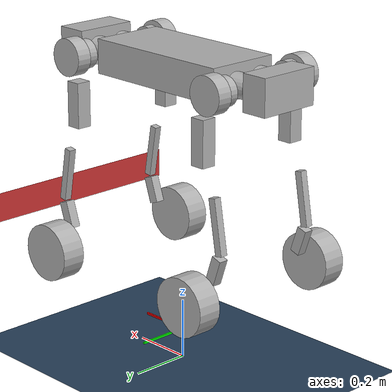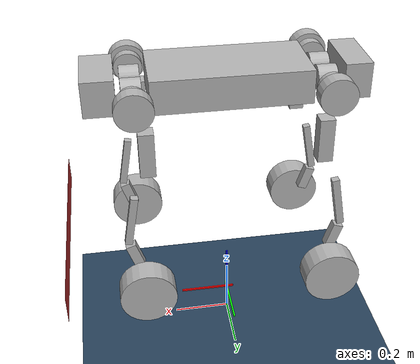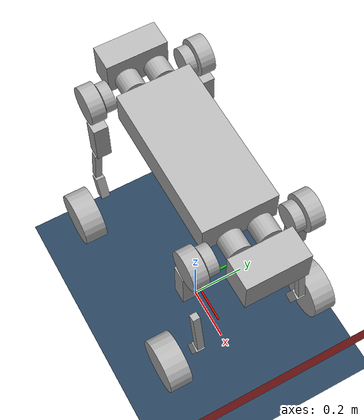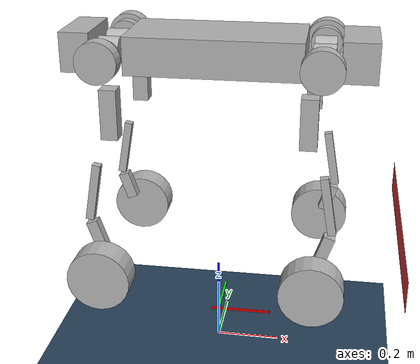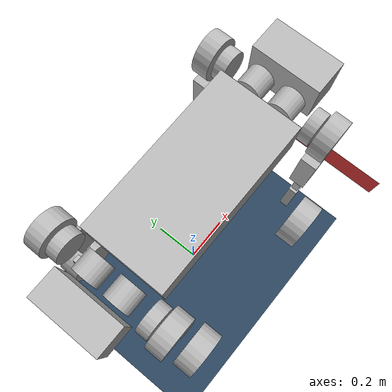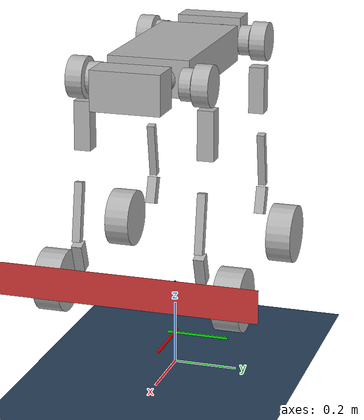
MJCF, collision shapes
<mujoco model="sirius_wheel scene">
    <include file="sirius_wheel_new.xml"/>
    <option timestep="0.005" integrator="RK4" />
    <statistic center="0 0 0.1" extent="0.8"/>
    <visual>
        <headlight diffuse="0.6 0.6 0.6" ambient="0.3 0.3 0.3" specular="0 0 0"/>
        <rgba haze="0.15 0.25 0.35 1"/>
        <global azimuth="-130" elevation="-20"/>
    </visual>
    <asset>
        <texture type="skybox" builtin="gradient" rgb1="0.3 0.5 0.7" rgb2="0 0 0" width="512" height="3072"/>
        <texture type="2d" name="groundplane" builtin="checker" mark="edge" rgb1="0.2 0.3 0.4" rgb2="0.1 0.2 0.3"
                 markrgb="0.8 0.8 0.8" width="300" height="300"/>
        <material name="groundplane" texture="groundplane" texuniform="true" texrepeat="5 5" reflectance="0.2"/>
    </asset>
    <worldbody>
        <geom name="floor" type="plane" size="0 0 0.05" material="groundplane"/>
        <geom name="box_obs"
            type="box"
            size="2.0 2.0 0.05"
            pos="2.7 0 0.45"
            rgba="0.8 0.2 0.2 1"
            contype="1" conaffinity="1"/>

        <body mocap="true" name="esti_indicator" pos="0.0 0.0 0.1">
            <site pos="0 0 0.075" size="0.003 0.003 0.1" type="box" name="mocap_left_site1" rgba="0 0 1 1"/>
            <site pos="0 0.075 0" size="0.003 0.1 0.003" type="box" name="mocap_left_site2" rgba="0 1 0 1"/>
            <site pos="0.075 0 0" size="0.1 0.003 0.003" type="box" name="mocap_left_site3" rgba="1 0 0 1"/>
        </body>

        <body mocap="true" name="start_pos" pos="0.0 0.0 0.1">
            <site pos="0 0 0.075" size="0.003 0.003 0.1" type="box" name="start_pos1" rgba="0 0 1 1"/>
            <site pos="0 0.075 0" size="0.003 0.1 0.003" type="box" name="start_pos2" rgba="0 1 0 1"/>
            <site pos="0.075 0 0" size="0.1 0.003 0.003" type="box" name="start_pos3" rgba="1 0 0 1"/>
        </body>
    </worldbody>
</mujoco>

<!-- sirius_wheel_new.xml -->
<mujoco model="sirius_wheel">
    <compiler angle="radian" meshdir="../new_assets/" autolimits="true" eulerseq="ZYX"/>
    <option cone="elliptic" impratio="100" integrator="implicitfast" timestep="0.001"/>
    <visual>
        <global ellipsoidinertia="true"/>
    </visual>

    <default>
        <default class="sirius_wheel">
            <geom condim="6" solimp="0.5 0.95 0.001 0.5 2"/>
            <site group="5"/>
            <default class="abad">
                <motor ctrlrange="-40 40" forcerange="-40 40"/>
            </default>
            <default class="hip">
                <motor ctrlrange="-40 40" forcerange="-40 40"/>
            </default>
            <default class="knee">
                <motor ctrlrange="-100 100" forcerange="-100 100"/>
            </default>
            <default class="wheel">
                <motor ctrlrange="-40 40" forcerange="-40 40"/>
            </default>
            <default class="visual">
                <geom type="mesh" contype="0" conaffinity="0" group="2"/>
            </default>
            <default class="collision">
                <geom group="3"/>
            </default>
        </default>
    </default>

    <asset>
        <mesh name="base_link" file="base_link.STL"/>
        <mesh name="LF_ABAD_Link" file="LF_ABAD_Link.STL"/>
        <mesh name="LF_THIGH_Link" file="LF_THIGH_Link.STL"/>
        <mesh name="LF_SHANK_Link" file="LF_SHANK_Link.STL"/>
        <mesh name="LF_FOOT_Link" file="LF_FOOT_Link.STL"/>
        <mesh name="RF_ABAD_Link" file="RF_ABAD_Link.STL"/>
        <mesh name="RF_THIGH_Link" file="RF_THIGH_Link.STL"/>
        <mesh name="RF_SHANK_Link" file="RF_SHANK_Link.STL"/>
        <mesh name="RF_FOOT_Link" file="RF_FOOT_Link.STL"/>
        <mesh name="LH_ABAD_Link" file="LH_ABAD_Link.STL"/>
        <mesh name="LH_THIGH_Link" file="LH_THIGH_Link.STL"/>
        <mesh name="LH_SHANK_Link" file="LH_SHANK_Link.STL"/>
        <mesh name="LH_FOOT_Link" file="LH_FOOT_Link.STL"/>
        <mesh name="RH_ABAD_Link" file="RH_ABAD_Link.STL"/>
        <mesh name="RH_THIGH_Link" file="RH_THIGH_Link.STL"/>
        <mesh name="RH_SHANK_Link" file="RH_SHANK_Link.STL"/>
        <mesh name="RH_FOOT_Link" file="RH_FOOT_Link.STL"/>
        <material name="grey" rgba="0.2 0.2 0.2 1.0"/>
    </asset>

    <worldbody>
        <body name="trunk" pos="0 0 1.0" childclass="sirius_wheel">
            <camera name="tracking" mode="trackcom" pos="0 -1 0.8" xyaxes="1 0 0 0 1 1"/>
            <inertial pos="0.00771202 -2.38069e-06 0.00294617" quat="1.00163e-05 0.70184 1.85912e-05 0.712335" mass="21.5552" diaginertia="0.962219 0.890231 0.122532"/>
            <joint name="floating_base_joint" type="free" limited="false" actuatorfrclimited="false"/>
            <geom class="visual" type="mesh" density="0" rgba="0.698039 0.698039 0.698039 1" mesh="base_link"/>
            <geom class="collision" size="0.2625 0.125 0.057" type="box" rgba="0.698039 0.698039 0.698039 1"/>
            <geom class="collision" size="0.0525 0.105 0.06" pos="0.418 0 0" type="box" rgba="0.698039 0.698039 0.698039 1"/>
            <geom class="collision" size="0.045 0.105 0.06" pos="-0.4105 0 0" type="box" rgba="0.698039 0.698039 0.698039 1"/>
            <site name="imu" pos="0.0043 -0.02 0.0414"/>

            <body name="RF_abad_link" pos="0.3154 -0.05 0">

                <inertial pos="-2.01943e-06 -0.0119999 -3.7868e-06" quat="0.000596564 0.707104 0.000520837 0.707109" mass="0.778648" diaginertia="0.00121131 0.000960297 0.000879709"/>
                <joint name="fr_abad_joint" pos="0 0 0" axis="1 0 0" range="-1.57 1.57" actuatorfrcrange="-40 40"/>
                <geom class="visual" type="mesh" density="0" rgba="0.698039 0.698039 0.698039 1" mesh="RF_ABAD_Link"/>
                <geom class="collision" size="0.04 0.0325" quat="0.707107 0 0.707107 0" type="cylinder" rgba="0.698039 0.698039 0.698039 1"/>
                <body name="RF_thigh_link" pos="0 -0.1388 0">
                    <inertial pos="-0.00412079 0.0352397 -0.029084" quat="0.469884 -0.00183031 0.11521 0.875176" mass="2.10685" diaginertia="0.0136982 0.0135394 0.00268877"/>
                    <joint name="fr_hip_joint" pos="0 0 0" axis="0 1 0" range="-1.04 4.18" actuatorfrcrange="-40 40"/>
                    <geom class="visual" type="mesh" density="0" rgba="0.698039 0.698039 0.698039 1" mesh="RF_THIGH_Link"/>
                    <geom class="collision" size="0.048 0.0175" pos="0 0.048 0" quat="0.707107 0.707107 0 0" type="cylinder" rgba="0.698039 0.698039 0.698039 1"/>
                    <geom class="collision" size="0.062 0.025" quat="0.707107 0.707107 0 0" type="cylinder" rgba="0.698039 0.698039 0.698039 1"/>
                    <geom class="collision" size="0.075 0.025 0.025" pos="-0.03 0 -0.15" quat="0.707107 0 0.707107 0" type="box" rgba="0.698039 0.698039 0.698039 1"/>
                    <body name="RF_shank_link" pos="0 0 -0.272">
                        <inertial pos="0.00691056 -0.0384575 -0.310502" quat="0.525419 -0.0225167 0.0943718 0.845294" mass="1.26478" diaginertia="0.0162682 0.0158354 0.00130658"/>
                        <joint name="fr_knee_joint" pos="0 0 0" axis="0 1 0" range="-2.69 -0.68" actuatorfrcrange="-100 100"/>
                        <geom class="visual" type="mesh" density="0" rgba="0.698039 0.698039 0.698039 1" mesh="RF_SHANK_Link"/>
                        <geom class="collision" size="0.09 0.0125 0.0125" pos="0.035 0 -0.13" quat="0.764842 0 0.644218 0" type="box" rgba="0.698039 0.698039 0.698039 1"/>
                        <geom class="collision" size="0.045 0.016 0.0175" pos="0.03 0 -0.27" quat="0.581683 0 0.813416 0" type="box" rgba="0.698039 0.698039 0.698039 1"/>
                        <body name="RF_FOOT_link" pos="0 -0.0889282 -0.365367" quat="1 3.81916e-05 -5.98329e-10 -1.56665e-05">
                            <inertial pos="-4.11892e-09 0.016568 -6.73453e-10" quat="0.5 0.5 0.5 0.5" mass="0.750197" diaginertia="0.00508244 0.00268749 0.00268749"/>
                            <joint name="fr_wheel_joint" pos="0 0 0" axis="0 1 0" range="-17453.3 17453.3" actuatorfrcrange="-40 40"/>
                            <geom class="visual" type="mesh" density="0" material="grey" mesh="RF_FOOT_Link"/>
                            <geom class="collision" type="cylinder" size="0.095 0.0405" quat="0.707107 0.707107 0 0" rgba="0.698039 0.698039 0.698039 1"/>
                        </body>
                    </body>
                </body>
            </body>

            <body name="LF_abad_link" pos="0.3154 0.05 0">
                <inertial pos="-1.38221e-06 0.0119998 -3.78509e-06" quat="-0.000589927 0.707109 -0.000527551 0.707104" mass="0.778654" diaginertia="0.00121131 0.000960298 0.00087971"/>
                <joint name="fl_abad_joint" pos="0 0 0" axis="1 0 0" range="-1.57 1.57" actuatorfrcrange="-40 40"/>
                <geom class="visual" type="mesh" density="0" rgba="0.698039 0.698039 0.698039 1" mesh="LF_ABAD_Link"/>
                <geom class="collision" size="0.04 0.0325" quat="0.707107 0 0.707107 0" type="cylinder" rgba="0.698039 0.698039 0.698039 1"/>
                <body name="LF_thigh_link" pos="0 0.1388 0">
                    <inertial pos="-0.00412085 -0.0352419 -0.029079" quat="0.875057 0.115204 -0.00185057 0.470105" mass="2.10667" diaginertia="0.0136968 0.013538 0.00268849"/>
                    <joint name="fl_hip_joint" pos="0 0 0" axis="0 1 0" range="-1.04 4.18" actuatorfrcrange="-40 40"/>
                    <geom class="visual" type="mesh" density="0" rgba="0.698039 0.698039 0.698039 1" mesh="LF_THIGH_Link"/>
                    <geom class="collision" size="0.048 0.0175" pos="0 -0.048 0" quat="0.707107 0.707107 0 0" type="cylinder" rgba="0.698039 0.698039 0.698039 1"/>
                    <geom class="collision" size="0.062 0.025" quat="0.707107 0.707107 0 0" type="cylinder" rgba="0.698039 0.698039 0.698039 1"/>
                    <geom class="collision" size="0.075 0.025 0.025" pos="-0.03 0 -0.15" quat="0.707107 0 0.707107 0" type="box" rgba="0.698039 0.698039 0.698039 1"/>
                    <body name="LF_shank_link" pos="0 0 -0.272">
                        <inertial pos="0.00690866 0.0384609 -0.310503" quat="0.84516 0.0943631 -0.0225429 0.525635" mass="1.26483" diaginertia="0.0162686 0.0158352 0.00130706"/>
                        <joint name="fl_knee_joint" pos="0 0 0" axis="0 1 0" range="-2.69 -0.68" actuatorfrcrange="-100 100"/>
                        <geom class="visual" type="mesh" density="0" rgba="0.698039 0.698039 0.698039 1" mesh="LF_SHANK_Link"/>
                        <geom class="collision" size="0.09 0.0125 0.0125" pos="0.035 0 -0.13" quat="0.764842 0 0.644218 0" type="box" rgba="0.698039 0.698039 0.698039 1"/>
                        <geom class="collision" size="0.045 0.016 0.0175" pos="0.03 0 -0.27" quat="0.581683 0 0.813416 0" type="box" rgba="0.698039 0.698039 0.698039 1"/>
                        <body name="LF_FOOT_link" pos="0 0.0889282 -0.365367" quat="1 -3.81917e-05 -5.98325e-10 1.56664e-05">
                            <inertial pos="4.11893e-09 -0.016568 -6.73453e-10" quat="0.5 0.5 0.5 0.5" mass="0.750197" diaginertia="0.00508244 0.00268749 0.00268749"/>
                            <joint name="fl_wheel_joint" pos="0 0 0" axis="0 1 0" range="-17453.3 17453.3" actuatorfrcrange="-40 40"/>
                            <geom class="visual" type="mesh" density="0" material="grey" mesh="LF_FOOT_Link"/>
                            <geom class="collision" type="cylinder" size="0.095 0.0405" quat="0.707107 0.707107 0 0" rgba="0.698039 0.698039 0.698039 1"/>
                        </body>
                    </body>
                </body>
            </body>

            <body name="RH_abad_link" pos="-0.3155 -0.05 0">
                <inertial pos="-2.03304e-06 -0.0119999 -3.78531e-06" quat="0.000595832 0.707104 0.000521638 0.707109" mass="0.778648" diaginertia="0.00121131 0.000960297 0.000879709"/>
                <joint name="rr_abad_joint" pos="0 0 0" axis="1 0 0" range="-1.57 1.57" actuatorfrcrange="-40 40"/>
                <geom class="visual" type="mesh" density="0" rgba="0.698039 0.698039 0.698039 1" mesh="RH_ABAD_Link"/>
                <geom class="collision" size="0.04 0.0325" quat="0.707107 0 0.707107 0" type="cylinder" rgba="0.698039 0.698039 0.698039 1"/>
                <body name="RH_thigh_link" pos="0 -0.1388 0">
                    <inertial pos="0.00412085 0.0352419 -0.0290789" quat="0.875062 -0.115203 0.00184915 0.470097" mass="2.10668" diaginertia="0.0136968 0.0135381 0.0026885"/>
                    <joint name="rr_hip_joint" pos="0 0 0" axis="0 1 0" range="-4.18 1.04" actuatorfrcrange="-40 40"/>
                    <geom class="visual" type="mesh" density="0" rgba="0.698039 0.698039 0.698039 1" mesh="RH_THIGH_Link"/>
                    <geom class="collision" size="0.048 0.0175" pos="0 0.048 0" quat="0.707107 0.707107 0 0" type="cylinder" rgba="0.698039 0.698039 0.698039 1"/>
                    <geom class="collision" size="0.062 0.025" quat="0.707107 0.707107 0 0" type="cylinder" rgba="0.698039 0.698039 0.698039 1"/>
                    <geom class="collision" size="0.075 0.025 0.025" pos="0.03 0 -0.15" quat="0.707107 0 -0.707107 0" type="box" rgba="0.698039 0.698039 0.698039 1"/>
                    <body name="RH_shank_link" pos="0 0 -0.272">
                        <inertial pos="-0.00690864 -0.0384609 -0.310502" quat="0.845161 -0.0943635 0.0225414 0.525633" mass="1.26483" diaginertia="0.0162686 0.0158352 0.00130705"/>
                        <joint name="rr_knee_joint" pos="0 0 0" axis="0 1 0" range="0.68 2.69" actuatorfrcrange="-100 100"/>
                        <geom class="visual" type="mesh" density="0" rgba="0.698039 0.698039 0.698039 1" mesh="RH_SHANK_Link"/>
                        <geom class="collision" size="0.09 0.0125 0.0125" pos="-0.035 0 -0.13" quat="0.764842 0 -0.644218 0" type="box" rgba="0.698039 0.698039 0.698039 1"/>
                        <geom class="collision" size="0.045 0.016 0.0175" pos="-0.03 0 -0.27" quat="0.581683 0 -0.813416 0" type="box" rgba="0.698039 0.698039 0.698039 1"/>
                        <body name="RH_FOOT_link" pos="0 -0.0889282 -0.365367" quat="1 3.81917e-05 5.98325e-10 1.56664e-05">
                            <inertial pos="-4.11893e-09 0.016568 -6.73453e-10" quat="0.5 0.5 0.5 0.5" mass="0.750197" diaginertia="0.00508244 0.00268749 0.00268749"/>
                            <joint name="rr_wheel_joint" pos="0 0 0" axis="0 1 0" range="-17453.3 17453.3" actuatorfrcrange="-40 40"/>
                            <geom class="visual" type="mesh" density="0" material="grey" mesh="RH_FOOT_Link"/>
                            <geom class="collision" type="cylinder" size="0.095 0.0405" quat="0.707107 0.707107 0 0" rgba="0.698039 0.698039 0.698039 1"/>
                        </body>
                    </body>
                </body>
            </body>

            <body name="LH_abad_link" pos="-0.3155 0.05 0">
                <inertial pos="-1.36846e-06 0.0119998 -3.78369e-06" quat="-0.000590709 0.707109 -0.000526824 0.707104" mass="0.778654" diaginertia="0.00121131 0.000960298 0.00087971"/>
                <joint name="rl_abad_joint" pos="0 0 0" axis="1 0 0" range="-1.57 1.57" actuatorfrcrange="-40 40"/>
                <geom class="visual" type="mesh" density="0" rgba="0.698039 0.698039 0.698039 1" mesh="LH_ABAD_Link"/>
                <geom class="collision" size="0.04 0.0325" quat="0.707107 0 0.707107 0" type="cylinder" rgba="0.698039 0.698039 0.698039 1"/>
                <body name="LH_thigh_link" pos="0 0.1388 0">
                    <inertial pos="0.0041208 -0.0352397 -0.029084" quat="0.469884 0.00183043 -0.11521 0.875175" mass="2.10685" diaginertia="0.0136982 0.0135394 0.00268877"/>
                    <joint name="rl_hip_joint" pos="0 0 0" axis="0 1 0" range="-4.18 1.04" actuatorfrcrange="-40 40"/>
                    <geom class="visual" type="mesh" density="0" rgba="0.698039 0.698039 0.698039 1" mesh="LH_THIGH_Link"/>
                    <geom class="collision" size="0.048 0.0175" pos="0 -0.048 0" quat="0.707107 0.707107 0 0" type="cylinder" rgba="0.698039 0.698039 0.698039 1"/>
                    <geom class="collision" size="0.062 0.025" quat="0.707107 0.707107 0 0" type="cylinder" rgba="0.698039 0.698039 0.698039 1"/>
                    <geom class="collision" size="0.075 0.025 0.025" pos="0.03 0 -0.15" quat="0.707107 0 -0.707107 0" type="box" rgba="0.698039 0.698039 0.698039 1"/>
                    <body name="LH_shank_link" pos="0 0 -0.272">
                        <inertial pos="-0.00690497 0.0384556 -0.310503" quat="0.525543 0.0225509 -0.0943693 0.845216" mass="1.26487" diaginertia="0.0162685 0.0158352 0.0013072"/>
                        <joint name="rl_knee_joint" pos="0 0 0" axis="0 1 0" range="0.68 2.69" actuatorfrcrange="-100 100"/>
                        <geom class="visual" type="mesh" density="0" rgba="0.698039 0.698039 0.698039 1" mesh="LH_SHANK_Link"/>
                        <geom class="collision" size="0.09 0.0125 0.0125" pos="-0.035 0 -0.13" quat="0.764842 0 -0.644218 0" type="box" rgba="0.698039 0.698039 0.698039 1"/>
                        <geom class="collision" size="0.045 0.016 0.0175" pos="-0.03 0 -0.27" quat="0.581683 0 -0.813416 0" type="box" rgba="0.698039 0.698039 0.698039 1"/>
                        <body name="LH_FOOT_link" pos="0 0.0889282 -0.365367" quat="1 -3.81916e-05 5.98329e-10 -1.56665e-05">
                            <inertial pos="4.11892e-09 -0.016568 -6.73454e-10" quat="0.5 0.5 0.5 0.5" mass="0.750197" diaginertia="0.00508244 0.00268749 0.00268749"/>
                            <joint name="rl_wheel_joint" pos="0 0 0" axis="0 1 0" range="-17453.3 17453.3" actuatorfrcrange="-40 40"/>
                            <geom class="visual" type="mesh" density="0" material="grey" mesh="LH_FOOT_Link"/>
                            <geom class="collision" type="cylinder" size="0.095 0.0405" quat="0.707107 0.707107 0 0" rgba="0.698039 0.698039 0.698039 1"/>
                        </body>
                    </body>
                </body>
            </body>
        </body>
    </worldbody>

    <actuator>
        <motor class="abad" name="fr_abad_joint" joint="fr_abad_joint"/>
        <motor class="hip" name="fr_hip_joint" joint="fr_hip_joint"/>
        <motor class="knee" name="fr_knee_joint" joint="fr_knee_joint"/>

        <motor class="abad" name="fl_abad_joint" joint="fl_abad_joint"/>
        <motor class="hip" name="fl_hip_joint" joint="fl_hip_joint"/>
        <motor class="knee" name="fl_knee_joint" joint="fl_knee_joint"/>

        <motor class="abad" name="rr_abad_joint" joint="rr_abad_joint"/>
        <motor class="hip" name="rr_hip_joint" joint="rr_hip_joint"/>
        <motor class="knee" name="rr_knee_joint" joint="rr_knee_joint"/>

        <motor class="abad" name="rl_abad_joint" joint="rl_abad_joint"/>
        <motor class="hip" name="rl_hip_joint" joint="rl_hip_joint"/>
        <motor class="knee" name="rl_knee_joint" joint="rl_knee_joint"/>

        <motor class="wheel" name="fr_wheel_joint" joint="fr_wheel_joint"/>
        <motor class="wheel" name="fl_wheel_joint" joint="fl_wheel_joint"/>
        <motor class="wheel" name="rr_wheel_joint" joint="rr_wheel_joint"/>
        <motor class="wheel" name="rl_wheel_joint" joint="rl_wheel_joint"/>
    </actuator>

    <sensor>
        <gyro name="body_gyro" site="imu"/>
        <framequat name="body_quat" objtype="site" objname="imu"/>
        <accelerometer name="body_acc" site="imu"/>
    </sensor>

    <keyframe>
        <key name="home"
             qpos="0 0 0.25
                   1 0 0 0
                   0.0 1.57086 -2.9  0.0
                   0.0 1.57086 -2.9 0.0
                   -0.0 -1.57086 2.9 0.0
                   0.0 -1.57086 2.9 0.0"/>
        <key name="default_pos"
             qpos="0 0 0.55
                   1 0 0 0
                   0.0 0.95 -1.6 0.0
                   0.0 0.95 -1.6 0.0
                   0.0 -0.95 1.6 0.0
                   0.0 -0.95 1.6 0.0"/>
    </keyframe>
</mujoco>
